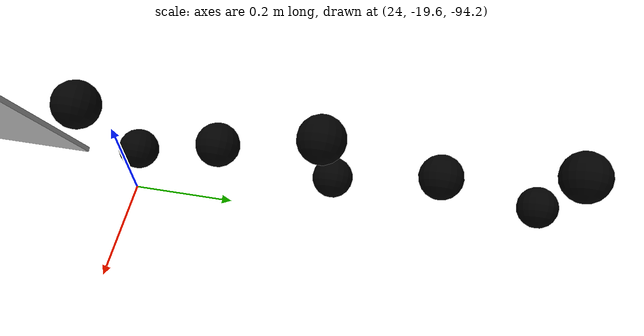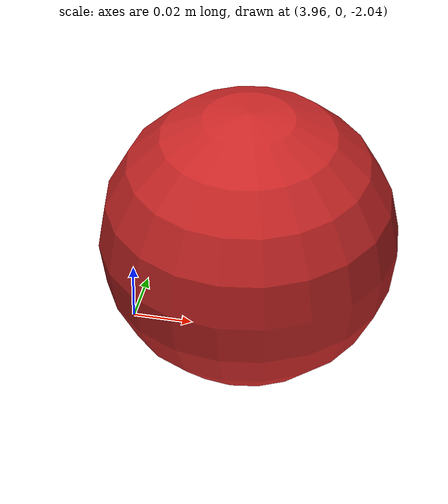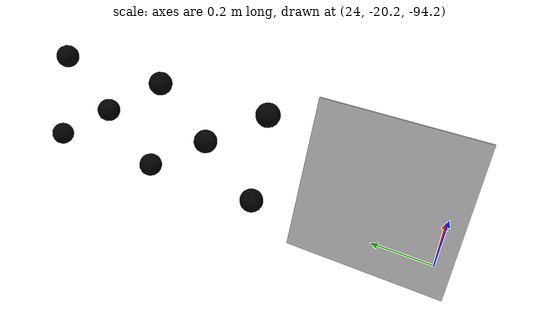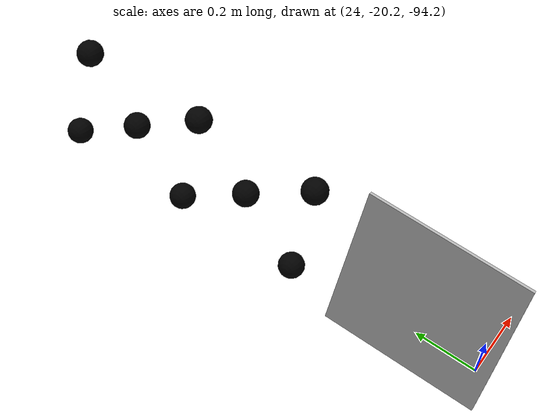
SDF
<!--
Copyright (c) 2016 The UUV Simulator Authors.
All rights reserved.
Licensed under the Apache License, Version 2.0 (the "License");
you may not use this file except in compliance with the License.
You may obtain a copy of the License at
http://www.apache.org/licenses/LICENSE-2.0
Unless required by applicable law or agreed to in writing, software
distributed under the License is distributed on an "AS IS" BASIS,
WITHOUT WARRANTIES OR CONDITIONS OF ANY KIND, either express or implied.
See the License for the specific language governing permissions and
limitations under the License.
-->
<sdf version="1.4">
 <world name="oceans_waves">
  <physics name="default_physics" type="ode" default="true">
   <real_time_update_rate>100</real_time_update_rate>
   <max_step_size>0.001</max_step_size>
  </physics>
  <scene>
   <ambient>0.01 0.01 0.01 1.0</ambient>
   <sky><clouds><speed>12</speed></clouds></sky>
   <shadows>1</shadows>
  </scene>
  <spherical_coordinates>
   <latitude_deg>56.71897669633431</latitude_deg>
   <longitude_deg>3.515625</longitude_deg>
  </spherical_coordinates>
  <light type="directional" name="sun1">
   <pose>50 0 150 0 0 0</pose>
   <diffuse>1 1 1 1</diffuse>
   <specular>.1 .1 .1 1</specular>
   <direction>0.3 0.3 -1</direction>
   <cast_shadows>false</cast_shadows>
  </light>
  <light type="directional" name="sun_diffuse">
   <pose>-50 0 -150 0 0 0</pose>
   <diffuse>0.6 0.6 0.6 1</diffuse>
   <specular>0 0 0 1</specular>
   <direction>-0.3 -0.3 -1</direction>
   <cast_shadows>false</cast_shadows>
  </light>
  <include><uri>model://chess_board</uri><name>chess_board</name><pose>24 -20 -94 0 -1.2 0</pose></include>
  <model name="sphere">
   <static>true</static>
   <pose>4 -0 -2 0 0 0</pose>
   <link name="link">
    <visual name="visual">
     <geometry><sphere><radius>0.05</radius></sphere></geometry>
     <material>
      <script><uri>file://media/materials/scripts/gazebo.material</uri><name>Gazebo/Red</name></script>
     </material>
    </visual>
   </link>
  </model>
  <plugin name="underwater_current_plugin" filename="libuuv_underwater_current_ros_plugin.so">
   <namespace>hydrodynamics</namespace>
   <constant_current>
    <topic>current_velocity</topic>
    <velocity><mean>0</mean><min>0</min><max>5</max><mu>0.0</mu><noiseAmp>0.0</noiseAmp></velocity>
    <horizontal_angle>
     <mean>0</mean>
     <min>-3.141592653589793238</min>
     <max>3.141592653589793238</max>
     <mu>0.0</mu>
     <noiseAmp>0.0</noiseAmp>
    </horizontal_angle>
    <vertical_angle>
     <mean>0</mean>
     <min>-3.141592653589793238</min>
     <max>3.141592653589793238</max>
     <mu>0.0</mu>
     <noiseAmp>0.0</noiseAmp>
    </vertical_angle>
   </constant_current>
  </plugin>
  <plugin name="sc_interface" filename="libuuv_sc_ros_interface_plugin.so"/>
 </world>
</sdf>

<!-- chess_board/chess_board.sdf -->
<sdf version="1.6">
  <model name="chess_board">
    <pose>0 0 0 0 0 0</pose>
    <static>true</static>

    <link name="board">

      <visual name="visual">
        <cast_shadows>false</cast_shadows>
        <geometry>
          <box>
            <size>0.5 0.5 .01</size>
          </box>
        </geometry>
        <material>
          <script>
            <uri>model://chess_board/materials/scripts</uri>
            <uri>model://chess_board/materials/textures</uri>
            <name>Cube/chess_board</name>
          </script>
        </material>
      </visual>
    </link>

    <!-- 添加12个黑色小球 -->
    <!-- 每个球的直径设为方格的1/4 -->

    <link name="sphere1">
      <pose>0.15 0.4 0 0 0 0</pose>
      <visual name="visual">
        <geometry>
          <sphere>
            <radius>0.04</radius>
          </sphere>
        </geometry>
        <material>
          <ambient>0 0 0 1</ambient>
          <diffuse>0 0 0 1</diffuse>
          <specular>0 0 0 1</specular>
          <emissive>0 0 0 1</emissive>
        </material>
      </visual>
    </link>

    <link name="sphere1-2">
      <pose>-0.15 0.4 0 0 0 0</pose>
      <visual name="visual">
        <geometry>
          <sphere>
            <radius>0.04</radius>
          </sphere>
        </geometry>
        <material>
          <ambient>0 0 0 1</ambient>
          <diffuse>0 0 0 1</diffuse>
          <specular>0 0 0 1</specular>
          <emissive>0 0 0 1</emissive>
        </material>
      </visual>
    </link>

    <link name="sphere2">
      <pose>0 0.6 0 0 0 0</pose>
      <visual name="visual">
        <geometry>
          <sphere>
            <radius>0.04</radius>
          </sphere>
        </geometry>
        <material>
          <ambient>0 0 0 1</ambient>
          <diffuse>0 0 0 1</diffuse>
          <specular>0 0 0 1</specular>
          <emissive>0 0 0 1</emissive>
        </material>
      </visual>
    </link>

    <link name="sphere3-1">
      <pose>0.15 0.8 0 0 0 0</pose>
      <visual name="visual">
        <geometry>
          <sphere>
            <radius>0.04</radius>
          </sphere>
        </geometry>
        <material>
          <ambient>0 0 0 1</ambient>
          <diffuse>0 0 0 1</diffuse>
          <specular>0 0 0 1</specular>
          <emissive>0 0 0 1</emissive>
        </material>
      </visual>
    </link>

    <link name="sphere3-2">
      <pose>-0.15 0.8 0 0 0 0</pose>
      <visual name="visual">
        <geometry>
          <sphere>
            <radius>0.04</radius>
          </sphere>
        </geometry>
        <material>
          <ambient>0 0 0 1</ambient>
          <diffuse>0 0 0 1</diffuse>
          <specular>0 0 0 1</specular>
          <emissive>0 0 0 1</emissive>
        </material>
      </visual>
    </link>

    <link name="sphere4">
      <pose>0 1 0 0 0 0</pose>
      <visual name="visual">
        <geometry>
          <sphere>
            <radius>0.04</radius>
          </sphere>
        </geometry>
        <material>
          <ambient>0 0 0 1</ambient>
          <diffuse>0 0 0 1</diffuse>
          <specular>0 0 0 1</specular>
          <emissive>0 0 0 1</emissive>
        </material>
      </visual>
    </link>

     <link name="sphere5-1">
      <pose>0.15 1.2 0 0 0 0</pose>
      <visual name="visual">
        <geometry>
          <sphere>
            <radius>0.04</radius>
          </sphere>
        </geometry>
        <material>
          <ambient>0 0 0 1</ambient>
          <diffuse>0 0 0 1</diffuse>
          <specular>0 0 0 1</specular>
          <emissive>0 0 0 1</emissive>
        </material>
      </visual>
    </link>

    <link name="sphere6-2">
      <pose>-0.15 1.2 0 0 0 0</pose>
      <visual name="visual">
        <geometry>
          <sphere>
            <radius>0.04</radius>
          </sphere>
        </geometry>
        <material>
          <ambient>0 0 0 1</ambient>
          <diffuse>0 0 0 1</diffuse>
          <specular>0 0 0 1</specular>
          <emissive>0 0 0 1</emissive>
        </material>
      </visual>
    </link>

    <surface_props:material>rubber</surface_props:material>
    <surface_props:biofouling_rating>0.1</surface_props:biofouling_rating>
    <surface_props:roughness>0.1</surface_props:roughness>

  </model>
</sdf>
